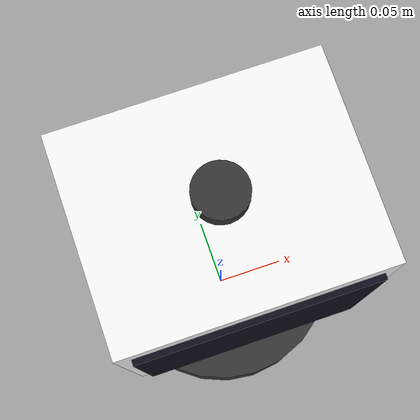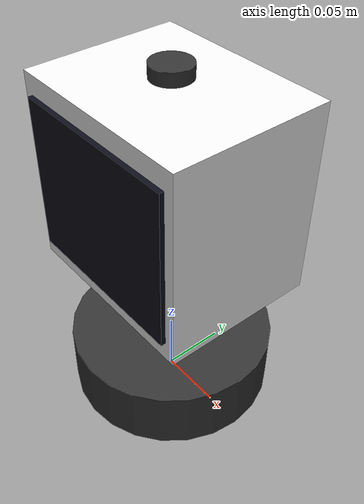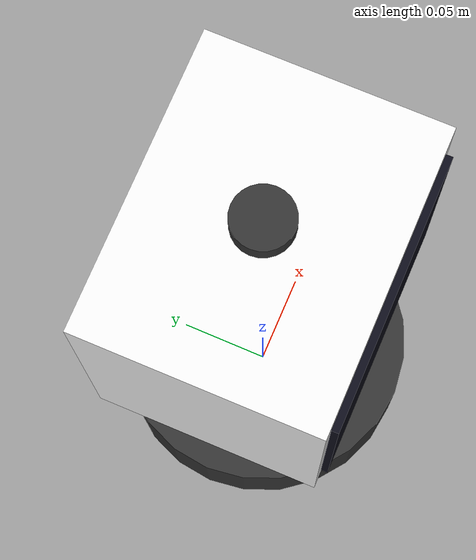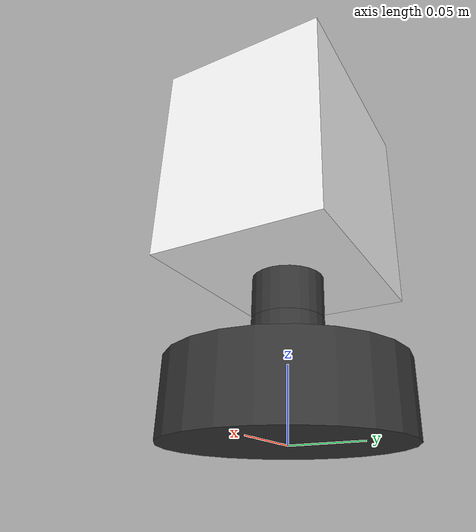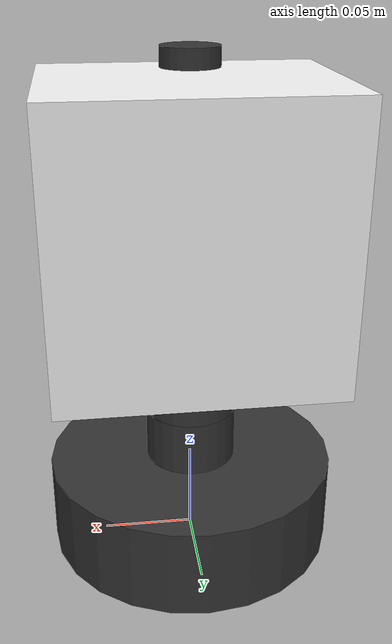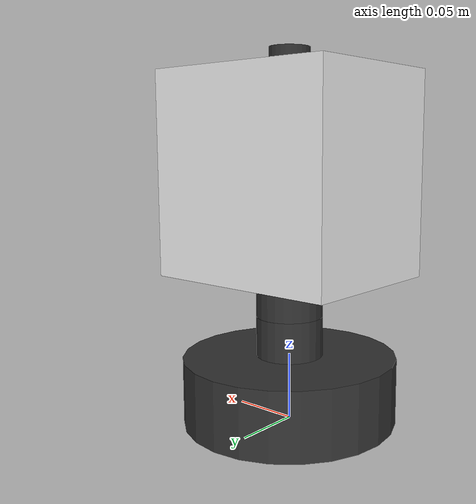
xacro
<?xml version="1.0"?>
<robot name="companion_head" xmlns:xacro="http://www.ros.org/wiki/xacro">

  <!-- ==================== ARGUMENTS ==================== -->
  <xacro:arg name="use_sim" default="false"/>
  <xacro:arg name="use_fake_hardware" default="true"/>
  <xacro:arg name="serial_port" default="/dev/ttyUSB0"/>
  <xacro:arg name="baud_rate" default="115200"/>

  <!-- ==================== PROPERTIES ==================== -->
  <!-- Base/Pedestal -->
  <xacro:property name="base_height" value="0.05"/>
  <xacro:property name="base_radius" value="0.08"/>
  <xacro:property name="base_mass" value="0.5"/>

  <!-- Neck -->
  <xacro:property name="neck_length" value="0.06"/>
  <xacro:property name="neck_radius" value="0.025"/>
  <xacro:property name="neck_mass" value="0.2"/>

  <!-- Head -->
  <xacro:property name="head_width" value="0.15"/>
  <xacro:property name="head_depth" value="0.12"/>
  <xacro:property name="head_height" value="0.15"/>
  <xacro:property name="head_mass" value="0.8"/>

  <!-- Joint limits -->
  <xacro:property name="pan_limit" value="${pi/2}"/>     <!-- ±90 degrees -->
  <xacro:property name="tilt_lower" value="${-pi/6}"/>   <!-- -30 degrees -->
  <xacro:property name="tilt_upper" value="${pi/4}"/>    <!-- +45 degrees -->
  <xacro:property name="max_velocity" value="2.0"/>      <!-- rad/s -->
  <xacro:property name="max_effort" value="5.0"/>

  <!-- ==================== MATERIALS ==================== -->
  <material name="white">
    <color rgba="0.95 0.95 0.95 1.0"/>
  </material>
  <material name="dark_gray">
    <color rgba="0.2 0.2 0.2 1.0"/>
  </material>
  <material name="light_blue">
    <color rgba="0.6 0.8 1.0 1.0"/>
  </material>
  <material name="screen_black">
    <color rgba="0.05 0.05 0.1 1.0"/>
  </material>

  <!-- ==================== INERTIA MACROS ==================== -->
  <xacro:macro name="cylinder_inertia" params="m r h">
    <inertia
      ixx="${m*(3*r*r + h*h)/12}" ixy="0" ixz="0"
      iyy="${m*(3*r*r + h*h)/12}" iyz="0"
      izz="${m*r*r/2}"/>
  </xacro:macro>

  <xacro:macro name="box_inertia" params="m x y z">
    <inertia
      ixx="${m*(y*y + z*z)/12}" ixy="0" ixz="0"
      iyy="${m*(x*x + z*z)/12}" iyz="0"
      izz="${m*(x*x + y*y)/12}"/>
  </xacro:macro>

  <!-- ==================== BASE LINK ==================== -->
  <link name="base_link">
    <visual>
      <geometry>
        <cylinder radius="${base_radius}" length="${base_height}"/>
      </geometry>
      <origin xyz="0 0 ${base_height/2}" rpy="0 0 0"/>
      <material name="dark_gray"/>
    </visual>
    <collision>
      <geometry>
        <cylinder radius="${base_radius}" length="${base_height}"/>
      </geometry>
      <origin xyz="0 0 ${base_height/2}" rpy="0 0 0"/>
    </collision>
    <inertial>
      <mass value="${base_mass}"/>
      <origin xyz="0 0 ${base_height/2}" rpy="0 0 0"/>
      <xacro:cylinder_inertia m="${base_mass}" r="${base_radius}" h="${base_height}"/>
    </inertial>
  </link>

  <!-- ==================== NECK PAN JOINT ==================== -->
  <!--
    PAN JOINT (Yaw):
    Allows horizontal rotation to look left/right.
    Range: -90° to +90° (π/2 radians each way)
  -->
  <joint name="neck_pan_joint" type="revolute">
    <parent link="base_link"/>
    <child link="neck_pan_link"/>
    <origin xyz="0 0 ${base_height}" rpy="0 0 0"/>
    <axis xyz="0 0 1"/>
    <limit lower="${-pan_limit}" upper="${pan_limit}"
           velocity="${max_velocity}" effort="${max_effort}"/>
    <dynamics damping="0.5" friction="0.1"/>
  </joint>

  <link name="neck_pan_link">
    <visual>
      <geometry>
        <cylinder radius="${neck_radius}" length="${neck_length/2}"/>
      </geometry>
      <origin xyz="0 0 ${neck_length/4}" rpy="0 0 0"/>
      <material name="dark_gray"/>
    </visual>
    <collision>
      <geometry>
        <cylinder radius="${neck_radius}" length="${neck_length/2}"/>
      </geometry>
      <origin xyz="0 0 ${neck_length/4}" rpy="0 0 0"/>
    </collision>
    <inertial>
      <mass value="${neck_mass/2}"/>
      <origin xyz="0 0 ${neck_length/4}" rpy="0 0 0"/>
      <xacro:cylinder_inertia m="${neck_mass/2}" r="${neck_radius}" h="${neck_length/2}"/>
    </inertial>
  </link>

  <!-- ==================== NECK TILT JOINT ==================== -->
  <!--
    TILT JOINT (Pitch):
    Allows vertical rotation to look up/down.
    Range: -30° (look down) to +45° (look up)
  -->
  <joint name="neck_tilt_joint" type="revolute">
    <parent link="neck_pan_link"/>
    <child link="neck_tilt_link"/>
    <origin xyz="0 0 ${neck_length/2}" rpy="0 0 0"/>
    <axis xyz="0 1 0"/>
    <limit lower="${tilt_lower}" upper="${tilt_upper}"
           velocity="${max_velocity}" effort="${max_effort}"/>
    <dynamics damping="0.5" friction="0.1"/>
  </joint>

  <link name="neck_tilt_link">
    <visual>
      <geometry>
        <cylinder radius="${neck_radius}" length="${neck_length/2}"/>
      </geometry>
      <origin xyz="0 0 ${neck_length/4}" rpy="0 0 0"/>
      <material name="dark_gray"/>
    </visual>
    <collision>
      <geometry>
        <cylinder radius="${neck_radius}" length="${neck_length/2}"/>
      </geometry>
      <origin xyz="0 0 ${neck_length/4}" rpy="0 0 0"/>
    </collision>
    <inertial>
      <mass value="${neck_mass/2}"/>
      <origin xyz="0 0 ${neck_length/4}" rpy="0 0 0"/>
      <xacro:cylinder_inertia m="${neck_mass/2}" r="${neck_radius}" h="${neck_length/2}"/>
    </inertial>
  </link>

  <!-- ==================== HEAD LINK ==================== -->
  <joint name="head_joint" type="fixed">
    <parent link="neck_tilt_link"/>
    <child link="head_link"/>
    <origin xyz="0 0 ${neck_length/2 + head_height/2}" rpy="0 0 0"/>
  </joint>

  <link name="head_link">
    <visual>
      <geometry>
        <box size="${head_width} ${head_depth} ${head_height}"/>
      </geometry>
      <origin xyz="0 0 0" rpy="0 0 0"/>
      <material name="white"/>
    </visual>
    <collision>
      <geometry>
        <box size="${head_width} ${head_depth} ${head_height}"/>
      </geometry>
      <origin xyz="0 0 0" rpy="0 0 0"/>
    </collision>
    <inertial>
      <mass value="${head_mass}"/>
      <origin xyz="0 0 0" rpy="0 0 0"/>
      <xacro:box_inertia m="${head_mass}" x="${head_width}" y="${head_depth}" z="${head_height}"/>
    </inertial>
  </link>

  <!-- ==================== DISPLAY LINK ==================== -->
  <joint name="display_joint" type="fixed">
    <parent link="head_link"/>
    <child link="display_link"/>
    <origin xyz="0 ${-head_depth/2 - 0.001} 0" rpy="0 0 0"/>
  </joint>

  <link name="display_link">
    <visual>
      <geometry>
        <box size="${head_width*0.9} 0.005 ${head_height*0.8}"/>
      </geometry>
      <origin xyz="0 0 0" rpy="0 0 0"/>
      <material name="screen_black"/>
    </visual>
  </link>

  <!-- ==================== CAMERA LINK ==================== -->
  <!--
    CAMERA:
    RGB camera for face detection and emotion recognition.
    Mounted behind the display looking outward.
  -->
  <joint name="camera_joint" type="fixed">
    <parent link="head_link"/>
    <child link="camera_link"/>
    <origin xyz="0 ${-head_depth/2 + 0.01} ${head_height*0.2}" rpy="0 0 0"/>
  </joint>

  <link name="camera_link">
    <visual>
      <geometry>
        <box size="0.02 0.02 0.02"/>
      </geometry>
      <origin xyz="0 0 0" rpy="0 0 0"/>
      <material name="dark_gray"/>
    </visual>
    <inertial>
      <mass value="0.05"/>
      <origin xyz="0 0 0"/>
      <inertia ixx="0.00001" ixy="0" ixz="0" iyy="0.00001" iyz="0" izz="0.00001"/>
    </inertial>
  </link>

  <!-- Camera optical frame (Z forward, X right, Y down - ROS convention) -->
  <joint name="camera_optical_joint" type="fixed">
    <parent link="camera_link"/>
    <child link="camera_optical_link"/>
    <origin xyz="0 0 0" rpy="${-pi/2} 0 ${-pi/2}"/>
  </joint>

  <link name="camera_optical_link"/>

  <!-- ==================== MICROPHONE LINK ==================== -->
  <!--
    MICROPHONE:
    Audio input sensor for speech recognition.
    Mounted on top of the head.
  -->
  <joint name="microphone_joint" type="fixed">
    <parent link="head_link"/>
    <child link="microphone_link"/>
    <origin xyz="0 0 ${head_height/2 + 0.01}" rpy="0 0 0"/>
  </joint>

  <link name="microphone_link">
    <visual>
      <geometry>
        <cylinder radius="0.015" length="0.01"/>
      </geometry>
      <origin xyz="0 0 0" rpy="0 0 0"/>
      <material name="dark_gray"/>
    </visual>
    <inertial>
      <mass value="0.02"/>
      <origin xyz="0 0 0"/>
      <inertia ixx="0.000001" ixy="0" ixz="0" iyy="0.000001" iyz="0" izz="0.000001"/>
    </inertial>
  </link>

  <!-- ==================== ROS2 CONTROL ==================== -->
  <xacro:include filename="$(find companion_head_description)/urdf/ros2_control.urdf.xacro"/>

  <!-- ==================== GAZEBO PLUGINS ==================== -->
  <xacro:if value="$(arg use_sim)">
    <xacro:include filename="$(find companion_head_description)/urdf/gazebo.urdf.xacro"/>
  </xacro:if>

</robot>
